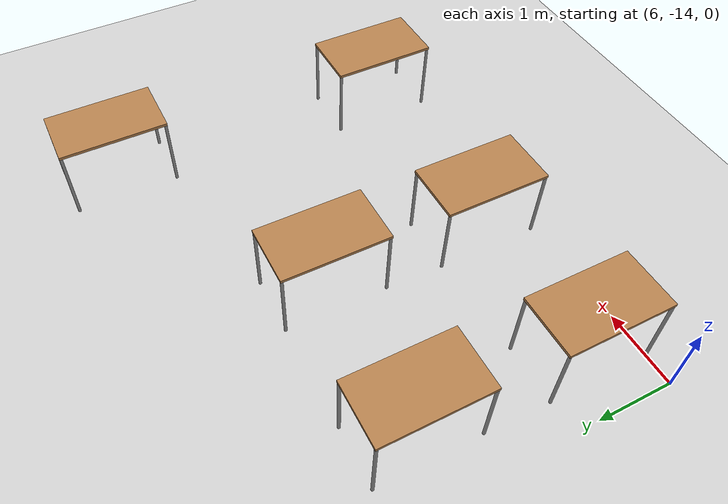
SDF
<sdf version="1.6">
 <world name="default">
  <model name="ground_plane">
   <static>1</static>
   <link name="link">
    <collision name="collision">
     <geometry><plane><normal>0 0 1</normal><size>100 100</size></plane></geometry>
     <surface><friction><ode><mu>100</mu><mu2>50</mu2></ode></friction></surface>
    </collision>
    <visual name="visual">
     <cast_shadows>0</cast_shadows>
     <geometry><plane><normal>0 0 1</normal><size>100 100</size></plane></geometry>
     <material>
      <script><uri>file://media/materials/scripts/gazebo.material</uri><name>Gazebo/Grey</name></script>
     </material>
    </visual>
   </link>
  </model>
  <model name="table_0">
   <static>0</static>
   <link name="link">
    <collision name="surface">
     <pose>0 0 1 0 -0 0</pose>
     <geometry><box><size>1.5 0.8 0.03</size></box></geometry>
     <surface><friction><ode><mu>0.6</mu><mu2>0.6</mu2></ode></friction></surface>
    </collision>
    <visual name="visual1">
     <pose>0 0 1 0 -0 0</pose>
     <geometry><box><size>1.4 0.8 0.04</size></box></geometry>
     <material>
      <script><uri>file://media/materials/scripts/gazebo.material</uri><name>Gazebo/Wood</name></script>
     </material>
    </visual>
    <collision name="front_left_leg">
     <pose>0.68 0.38 0.5 0 -0 0</pose>
     <geometry><cylinder><radius>0.02</radius><length>1</length></cylinder></geometry>
    </collision>
    <visual name="front_left_leg">
     <pose>0.68 0.38 0.5 0 -0 0</pose>
     <geometry><cylinder><radius>0.02</radius><length>1</length></cylinder></geometry>
     <material>
      <script><uri>file://media/materials/scripts/gazebo.material</uri><name>Gazebo/Grey</name></script>
     </material>
    </visual>
    <collision name="front_right_leg">
     <pose>0.68 -0.38 0.5 0 -0 0</pose>
     <geometry><cylinder><radius>0.02</radius><length>1</length></cylinder></geometry>
    </collision>
    <visual name="front_right_leg">
     <pose>0.68 -0.38 0.5 0 -0 0</pose>
     <geometry><cylinder><radius>0.02</radius><length>1</length></cylinder></geometry>
     <material>
      <script><uri>file://media/materials/scripts/gazebo.material</uri><name>Gazebo/Grey</name></script>
     </material>
    </visual>
    <collision name="back_right_leg">
     <pose>-0.68 -0.38 0.5 0 -0 0</pose>
     <geometry><cylinder><radius>0.02</radius><length>1</length></cylinder></geometry>
    </collision>
    <visual name="back_right_leg">
     <pose>-0.68 -0.38 0.5 0 -0 0</pose>
     <geometry><cylinder><radius>0.02</radius><length>1</length></cylinder></geometry>
     <material>
      <script><uri>file://media/materials/scripts/gazebo.material</uri><name>Gazebo/Grey</name></script>
     </material>
    </visual>
    <collision name="back_left_leg">
     <pose>-0.68 0.38 0.5 0 -0 0</pose>
     <geometry><cylinder><radius>0.02</radius><length>1</length></cylinder></geometry>
    </collision>
    <visual name="back_left_leg">
     <pose>-0.68 0.38 0.5 0 -0 0</pose>
     <geometry><cylinder><radius>0.02</radius><length>1</length></cylinder></geometry>
     <material>
      <script><uri>file://media/materials/scripts/gazebo.material</uri><name>Gazebo/Grey</name></script>
     </material>
    </visual>
    <inertial>
     <inertia><ixx>1</ixx><ixy>0</ixy><ixz>0</ixz><iyy>1</iyy><iyz>0</iyz><izz>1</izz></inertia>
     <mass>1</mass>
    </inertial>
   </link>
   <pose>6.803 -13.3459 -3e-06 -2e-06 -2e-06 1.57</pose>
  </model>
  <model name="table_0_clone">
   <static>0</static>
   <link name="link">
    <collision name="surface">
     <pose>0 0 1 0 -0 0</pose>
     <geometry><box><size>1.5 0.8 0.03</size></box></geometry>
     <surface><friction><ode><mu>0.6</mu><mu2>0.6</mu2></ode></friction></surface>
    </collision>
    <visual name="visual1">
     <pose>0 0 1 0 -0 0</pose>
     <geometry><box><size>1.4 0.8 0.04</size></box></geometry>
     <material>
      <script><uri>file://media/materials/scripts/gazebo.material</uri><name>Gazebo/Wood</name></script>
     </material>
    </visual>
    <collision name="front_left_leg">
     <pose>0.68 0.38 0.5 0 -0 0</pose>
     <geometry><cylinder><radius>0.02</radius><length>1</length></cylinder></geometry>
    </collision>
    <visual name="front_left_leg">
     <pose>0.68 0.38 0.5 0 -0 0</pose>
     <geometry><cylinder><radius>0.02</radius><length>1</length></cylinder></geometry>
     <material>
      <script><uri>file://media/materials/scripts/gazebo.material</uri><name>Gazebo/Grey</name></script>
     </material>
    </visual>
    <collision name="front_right_leg">
     <pose>0.68 -0.38 0.5 0 -0 0</pose>
     <geometry><cylinder><radius>0.02</radius><length>1</length></cylinder></geometry>
    </collision>
    <visual name="front_right_leg">
     <pose>0.68 -0.38 0.5 0 -0 0</pose>
     <geometry><cylinder><radius>0.02</radius><length>1</length></cylinder></geometry>
     <material>
      <script><uri>file://media/materials/scripts/gazebo.material</uri><name>Gazebo/Grey</name></script>
     </material>
    </visual>
    <collision name="back_right_leg">
     <pose>-0.68 -0.38 0.5 0 -0 0</pose>
     <geometry><cylinder><radius>0.02</radius><length>1</length></cylinder></geometry>
    </collision>
    <visual name="back_right_leg">
     <pose>-0.68 -0.38 0.5 0 -0 0</pose>
     <geometry><cylinder><radius>0.02</radius><length>1</length></cylinder></geometry>
     <material>
      <script><uri>file://media/materials/scripts/gazebo.material</uri><name>Gazebo/Grey</name></script>
     </material>
    </visual>
    <collision name="back_left_leg">
     <pose>-0.68 0.38 0.5 0 -0 0</pose>
     <geometry><cylinder><radius>0.02</radius><length>1</length></cylinder></geometry>
    </collision>
    <visual name="back_left_leg">
     <pose>-0.68 0.38 0.5 0 -0 0</pose>
     <geometry><cylinder><radius>0.02</radius><length>1</length></cylinder></geometry>
     <material>
      <script><uri>file://media/materials/scripts/gazebo.material</uri><name>Gazebo/Grey</name></script>
     </material>
    </visual>
    <inertial>
     <inertia><ixx>1</ixx><ixy>0</ixy><ixz>0</ixz><iyy>1</iyy><iyz>0</iyz><izz>1</izz></inertia>
     <mass>1</mass>
    </inertial>
   </link>
   <pose>8.92902 -13.2599 -3e-06 -3e-06 -2e-06 1.57</pose>
  </model>
  <model name="table_0_clone_0">
   <static>0</static>
   <link name="link">
    <collision name="surface">
     <pose>0 0 1 0 -0 0</pose>
     <geometry><box><size>1.5 0.8 0.03</size></box></geometry>
     <surface><friction><ode><mu>0.6</mu><mu2>0.6</mu2></ode></friction></surface>
    </collision>
    <visual name="visual1">
     <pose>0 0 1 0 -0 0</pose>
     <geometry><box><size>1.4 0.8 0.04</size></box></geometry>
     <material>
      <script><uri>file://media/materials/scripts/gazebo.material</uri><name>Gazebo/Wood</name></script>
     </material>
    </visual>
    <collision name="front_left_leg">
     <pose>0.68 0.38 0.5 0 -0 0</pose>
     <geometry><cylinder><radius>0.02</radius><length>1</length></cylinder></geometry>
    </collision>
    <visual name="front_left_leg">
     <pose>0.68 0.38 0.5 0 -0 0</pose>
     <geometry><cylinder><radius>0.02</radius><length>1</length></cylinder></geometry>
     <material>
      <script><uri>file://media/materials/scripts/gazebo.material</uri><name>Gazebo/Grey</name></script>
     </material>
    </visual>
    <collision name="front_right_leg">
     <pose>0.68 -0.38 0.5 0 -0 0</pose>
     <geometry><cylinder><radius>0.02</radius><length>1</length></cylinder></geometry>
    </collision>
    <visual name="front_right_leg">
     <pose>0.68 -0.38 0.5 0 -0 0</pose>
     <geometry><cylinder><radius>0.02</radius><length>1</length></cylinder></geometry>
     <material>
      <script><uri>file://media/materials/scripts/gazebo.material</uri><name>Gazebo/Grey</name></script>
     </material>
    </visual>
    <collision name="back_right_leg">
     <pose>-0.68 -0.38 0.5 0 -0 0</pose>
     <geometry><cylinder><radius>0.02</radius><length>1</length></cylinder></geometry>
    </collision>
    <visual name="back_right_leg">
     <pose>-0.68 -0.38 0.5 0 -0 0</pose>
     <geometry><cylinder><radius>0.02</radius><length>1</length></cylinder></geometry>
     <material>
      <script><uri>file://media/materials/scripts/gazebo.material</uri><name>Gazebo/Grey</name></script>
     </material>
    </visual>
    <collision name="back_left_leg">
     <pose>-0.68 0.38 0.5 0 -0 0</pose>
     <geometry><cylinder><radius>0.02</radius><length>1</length></cylinder></geometry>
    </collision>
    <visual name="back_left_leg">
     <pose>-0.68 0.38 0.5 0 -0 0</pose>
     <geometry><cylinder><radius>0.02</radius><length>1</length></cylinder></geometry>
     <material>
      <script><uri>file://media/materials/scripts/gazebo.material</uri><name>Gazebo/Grey</name></script>
     </material>
    </visual>
    <inertial>
     <inertia><ixx>1</ixx><ixy>0</ixy><ixz>0</ixz><iyy>1</iyy><iyz>0</iyz><izz>1</izz></inertia>
     <mass>1</mass>
    </inertial>
   </link>
   <pose>11.713 -13.2581 -3e-06 -2e-06 -2e-06 1.57</pose>
  </model>
  <model name="table_0_clone_0_clone">
   <static>0</static>
   <link name="link">
    <collision name="surface">
     <pose>0 0 1 0 -0 0</pose>
     <geometry><box><size>1.5 0.8 0.03</size></box></geometry>
     <surface><friction><ode><mu>0.6</mu><mu2>0.6</mu2></ode></friction></surface>
    </collision>
    <visual name="visual1">
     <pose>0 0 1 0 -0 0</pose>
     <geometry><box><size>1.4 0.8 0.04</size></box></geometry>
     <material>
      <script><uri>file://media/materials/scripts/gazebo.material</uri><name>Gazebo/Wood</name></script>
     </material>
    </visual>
    <collision name="front_left_leg">
     <pose>0.68 0.38 0.5 0 -0 0</pose>
     <geometry><cylinder><radius>0.02</radius><length>1</length></cylinder></geometry>
    </collision>
    <visual name="front_left_leg">
     <pose>0.68 0.38 0.5 0 -0 0</pose>
     <geometry><cylinder><radius>0.02</radius><length>1</length></cylinder></geometry>
     <material>
      <script><uri>file://media/materials/scripts/gazebo.material</uri><name>Gazebo/Grey</name></script>
     </material>
    </visual>
    <collision name="front_right_leg">
     <pose>0.68 -0.38 0.5 0 -0 0</pose>
     <geometry><cylinder><radius>0.02</radius><length>1</length></cylinder></geometry>
    </collision>
    <visual name="front_right_leg">
     <pose>0.68 -0.38 0.5 0 -0 0</pose>
     <geometry><cylinder><radius>0.02</radius><length>1</length></cylinder></geometry>
     <material>
      <script><uri>file://media/materials/scripts/gazebo.material</uri><name>Gazebo/Grey</name></script>
     </material>
    </visual>
    <collision name="back_right_leg">
     <pose>-0.68 -0.38 0.5 0 -0 0</pose>
     <geometry><cylinder><radius>0.02</radius><length>1</length></cylinder></geometry>
    </collision>
    <visual name="back_right_leg">
     <pose>-0.68 -0.38 0.5 0 -0 0</pose>
     <geometry><cylinder><radius>0.02</radius><length>1</length></cylinder></geometry>
     <material>
      <script><uri>file://media/materials/scripts/gazebo.material</uri><name>Gazebo/Grey</name></script>
     </material>
    </visual>
    <collision name="back_left_leg">
     <pose>-0.68 0.38 0.5 0 -0 0</pose>
     <geometry><cylinder><radius>0.02</radius><length>1</length></cylinder></geometry>
    </collision>
    <visual name="back_left_leg">
     <pose>-0.68 0.38 0.5 0 -0 0</pose>
     <geometry><cylinder><radius>0.02</radius><length>1</length></cylinder></geometry>
     <material>
      <script><uri>file://media/materials/scripts/gazebo.material</uri><name>Gazebo/Grey</name></script>
     </material>
    </visual>
    <inertial>
     <inertia><ixx>1</ixx><ixy>0</ixy><ixz>0</ixz><iyy>1</iyy><iyz>0</iyz><izz>1</izz></inertia>
     <mass>1</mass>
    </inertial>
   </link>
   <pose>11.8787 -9.43946 -1e-05 0 -0 1.57164</pose>
  </model>
  <model name="table_0_clone_0_clone_0">
   <static>0</static>
   <link name="link">
    <collision name="surface">
     <pose>0 0 1 0 -0 0</pose>
     <geometry><box><size>1.5 0.8 0.03</size></box></geometry>
     <surface><friction><ode><mu>0.6</mu><mu2>0.6</mu2></ode></friction></surface>
    </collision>
    <visual name="visual1">
     <pose>0 0 1 0 -0 0</pose>
     <geometry><box><size>1.4 0.8 0.04</size></box></geometry>
     <material>
      <script><uri>file://media/materials/scripts/gazebo.material</uri><name>Gazebo/Wood</name></script>
     </material>
    </visual>
    <collision name="front_left_leg">
     <pose>0.68 0.38 0.5 0 -0 0</pose>
     <geometry><cylinder><radius>0.02</radius><length>1</length></cylinder></geometry>
    </collision>
    <visual name="front_left_leg">
     <pose>0.68 0.38 0.5 0 -0 0</pose>
     <geometry><cylinder><radius>0.02</radius><length>1</length></cylinder></geometry>
     <material>
      <script><uri>file://media/materials/scripts/gazebo.material</uri><name>Gazebo/Grey</name></script>
     </material>
    </visual>
    <collision name="front_right_leg">
     <pose>0.68 -0.38 0.5 0 -0 0</pose>
     <geometry><cylinder><radius>0.02</radius><length>1</length></cylinder></geometry>
    </collision>
    <visual name="front_right_leg">
     <pose>0.68 -0.38 0.5 0 -0 0</pose>
     <geometry><cylinder><radius>0.02</radius><length>1</length></cylinder></geometry>
     <material>
      <script><uri>file://media/materials/scripts/gazebo.material</uri><name>Gazebo/Grey</name></script>
     </material>
    </visual>
    <collision name="back_right_leg">
     <pose>-0.68 -0.38 0.5 0 -0 0</pose>
     <geometry><cylinder><radius>0.02</radius><length>1</length></cylinder></geometry>
    </collision>
    <visual name="back_right_leg">
     <pose>-0.68 -0.38 0.5 0 -0 0</pose>
     <geometry><cylinder><radius>0.02</radius><length>1</length></cylinder></geometry>
     <material>
      <script><uri>file://media/materials/scripts/gazebo.material</uri><name>Gazebo/Grey</name></script>
     </material>
    </visual>
    <collision name="back_left_leg">
     <pose>-0.68 0.38 0.5 0 -0 0</pose>
     <geometry><cylinder><radius>0.02</radius><length>1</length></cylinder></geometry>
    </collision>
    <visual name="back_left_leg">
     <pose>-0.68 0.38 0.5 0 -0 0</pose>
     <geometry><cylinder><radius>0.02</radius><length>1</length></cylinder></geometry>
     <material>
      <script><uri>file://media/materials/scripts/gazebo.material</uri><name>Gazebo/Grey</name></script>
     </material>
    </visual>
    <inertial>
     <inertia><ixx>1</ixx><ixy>0</ixy><ixz>0</ixz><iyy>1</iyy><iyz>0</iyz><izz>1</izz></inertia>
     <mass>1</mass>
    </inertial>
   </link>
   <pose>8.95502 -11.1223 -3e-06 -3e-06 -2e-06 1.57</pose>
  </model>
  <model name="table_0_clone_0_clone_0_clone">
   <static>0</static>
   <link name="link">
    <collision name="surface">
     <pose>0 0 1 0 -0 0</pose>
     <geometry><box><size>1.5 0.8 0.03</size></box></geometry>
     <surface><friction><ode><mu>0.6</mu><mu2>0.6</mu2></ode></friction></surface>
    </collision>
    <visual name="visual1">
     <pose>0 0 1 0 -0 0</pose>
     <geometry><box><size>1.4 0.8 0.04</size></box></geometry>
     <material>
      <script><uri>file://media/materials/scripts/gazebo.material</uri><name>Gazebo/Wood</name></script>
     </material>
    </visual>
    <collision name="front_left_leg">
     <pose>0.68 0.38 0.5 0 -0 0</pose>
     <geometry><cylinder><radius>0.02</radius><length>1</length></cylinder></geometry>
    </collision>
    <visual name="front_left_leg">
     <pose>0.68 0.38 0.5 0 -0 0</pose>
     <geometry><cylinder><radius>0.02</radius><length>1</length></cylinder></geometry>
     <material>
      <script><uri>file://media/materials/scripts/gazebo.material</uri><name>Gazebo/Grey</name></script>
     </material>
    </visual>
    <collision name="front_right_leg">
     <pose>0.68 -0.38 0.5 0 -0 0</pose>
     <geometry><cylinder><radius>0.02</radius><length>1</length></cylinder></geometry>
    </collision>
    <visual name="front_right_leg">
     <pose>0.68 -0.38 0.5 0 -0 0</pose>
     <geometry><cylinder><radius>0.02</radius><length>1</length></cylinder></geometry>
     <material>
      <script><uri>file://media/materials/scripts/gazebo.material</uri><name>Gazebo/Grey</name></script>
     </material>
    </visual>
    <collision name="back_right_leg">
     <pose>-0.68 -0.38 0.5 0 -0 0</pose>
     <geometry><cylinder><radius>0.02</radius><length>1</length></cylinder></geometry>
    </collision>
    <visual name="back_right_leg">
     <pose>-0.68 -0.38 0.5 0 -0 0</pose>
     <geometry><cylinder><radius>0.02</radius><length>1</length></cylinder></geometry>
     <material>
      <script><uri>file://media/materials/scripts/gazebo.material</uri><name>Gazebo/Grey</name></script>
     </material>
    </visual>
    <collision name="back_left_leg">
     <pose>-0.68 0.38 0.5 0 -0 0</pose>
     <geometry><cylinder><radius>0.02</radius><length>1</length></cylinder></geometry>
    </collision>
    <visual name="back_left_leg">
     <pose>-0.68 0.38 0.5 0 -0 0</pose>
     <geometry><cylinder><radius>0.02</radius><length>1</length></cylinder></geometry>
     <material>
      <script><uri>file://media/materials/scripts/gazebo.material</uri><name>Gazebo/Grey</name></script>
     </material>
    </visual>
    <inertial>
     <inertia><ixx>1</ixx><ixy>0</ixy><ixz>0</ixz><iyy>1</iyy><iyz>0</iyz><izz>1</izz></inertia>
     <mass>1</mass>
    </inertial>
   </link>
   <pose>6.82658 -11.1283 -3e-06 -2e-06 -2e-06 1.57</pose>
  </model>
 </world>
</sdf>
